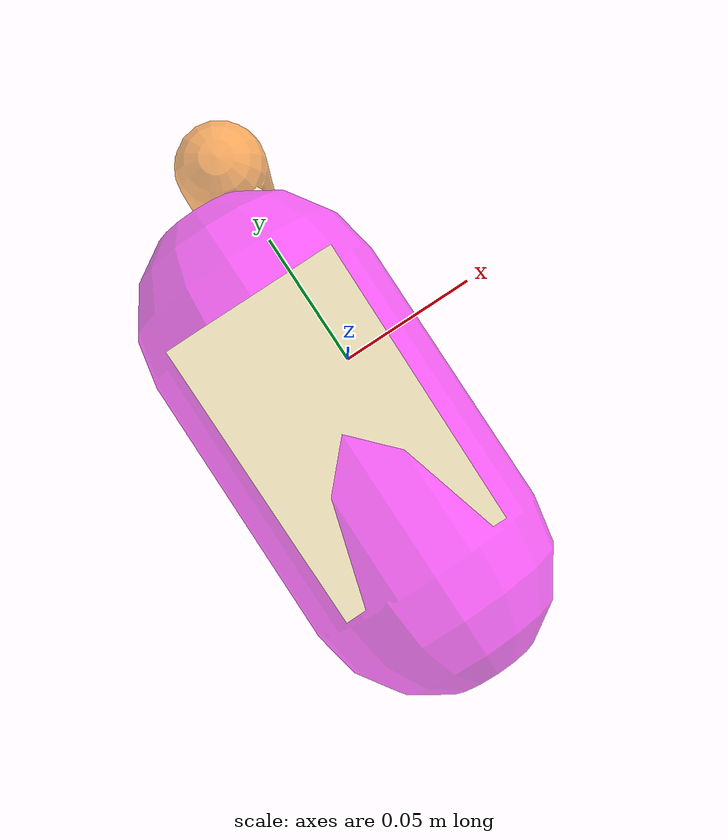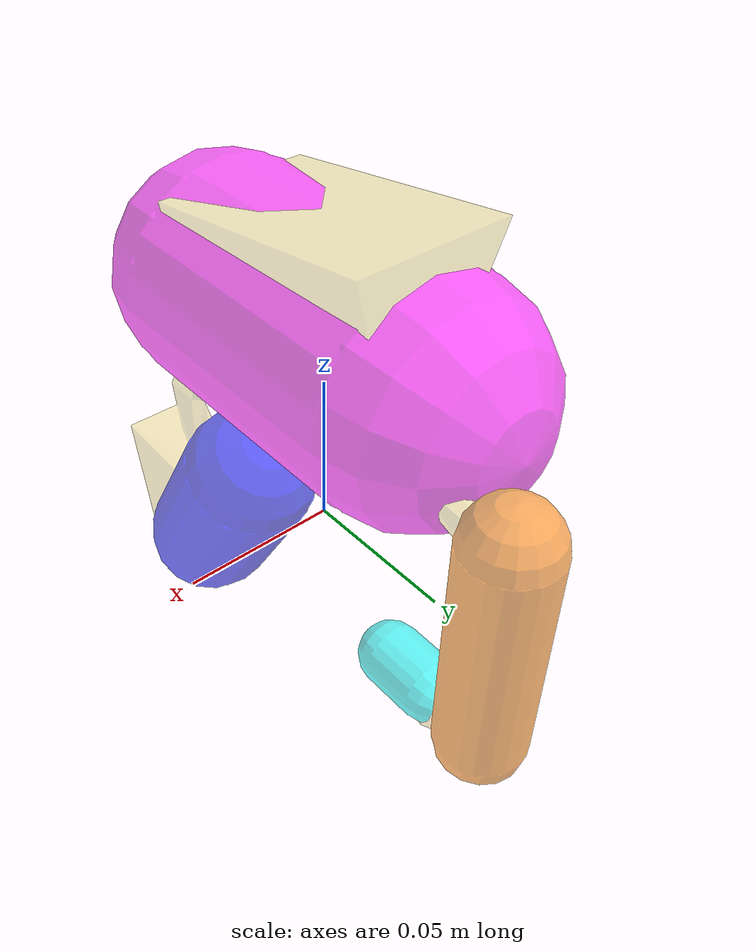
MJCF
<mujoco model="test_carabiner_capsules_2">
  <compiler angle="radian" meshdir="meshes_blender" autolimits="true"/>

  <asset>
    <mesh name="carabiner_visual" file="simplified/simplified_carabiner/simplified_carabiner.obj" scale="0.001 0.001 0.001"/>
  </asset>

  <visual>
    <headlight ambient="0.4 0.4 0.4" diffuse="0.7 0.7 0.7" specular="0.1 0.1 0.1"/>
  </visual>

  <worldbody>
    <light pos="0 0 1" dir="0 0 -1" diffuse="0.7 0.7 0.7"/>

    <!-- Semi-transparent carabiner visual (alpha=0.35) -->
    <geom type="mesh" mesh="carabiner_visual" rgba="0.85 0.75 0.25 0.35"
          contype="0" conaffinity="0"/>

    <!-- New 4-capsule decomposition from sketch -->

    <!-- (1) Top arc: one horizontal capsule across the top of the hook (shifted up so inner surface hugs hook ID) -->
    <geom type="capsule"
          fromto="-0.00199  0.07200 -0.04200  -0.00199  0.07200  0.03800"
          size="0.01500" rgba="1 0.5 0 0.6" contype="0" conaffinity="0"/>

    <!-- (2) Gate-inner: small vertical capsule on the inside-left of the hook opening (shortened, doesn't extend past gate cut) -->
    <geom type="capsule"
          fromto="-0.00199  0.05000 -0.04200  -0.00199  0.03200 -0.04200"
          size="0.01100" rgba="0 1 1 0.6" contype="0" conaffinity="0"/>

    <!-- (3) Spine: large vertical capsule covering the main body (shifted outward +z so it matches hook ID and prism OD) -->
    <geom type="capsule"
          fromto="-0.01692 -0.07000  0.05000  -0.01692  0.02200  0.05000"
          size="0.04000" rgba="1 0 1 0.6" contype="0" conaffinity="0"/>

    <!-- (4) Bottom diagonal: angled capsule covering the bottom curve (lower-left to upper-right of bottom) -->
    <geom type="capsule"
          fromto=" 0.00000 -0.07000 -0.06000   0.00000 -0.04000 -0.01000"
          size="0.02400" rgba="0 0 1 0.6" contype="0" conaffinity="0"/>
  </worldbody>
</mujoco>
